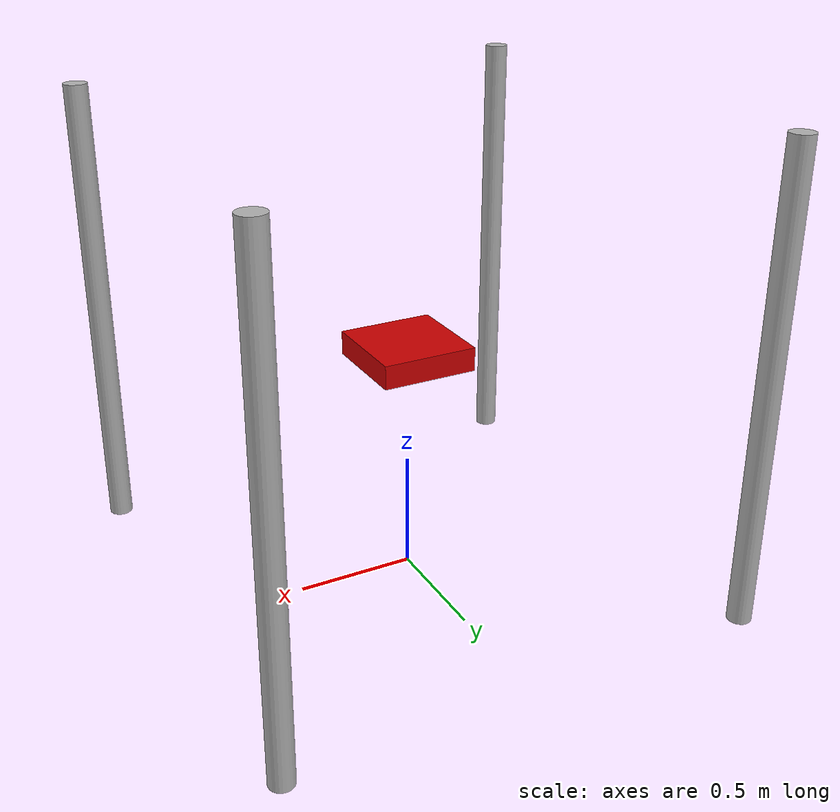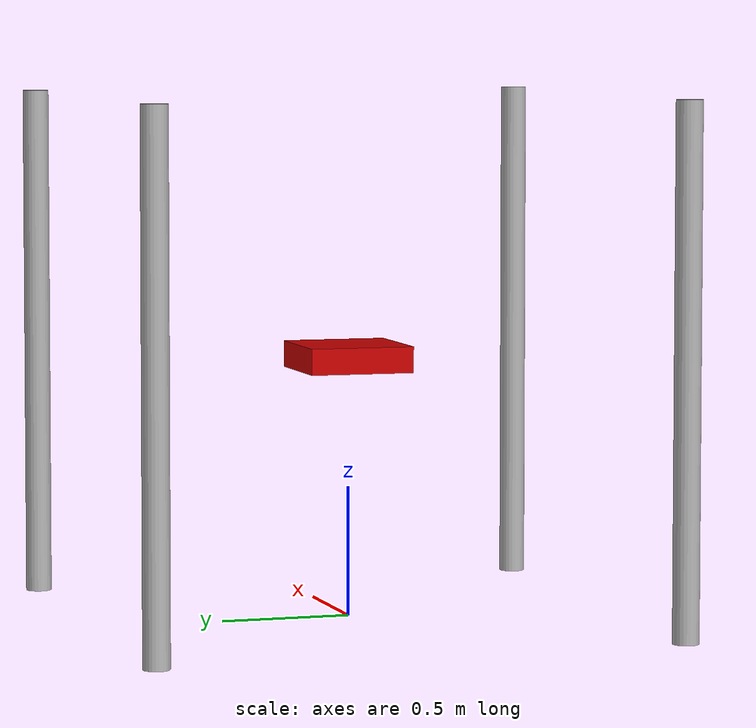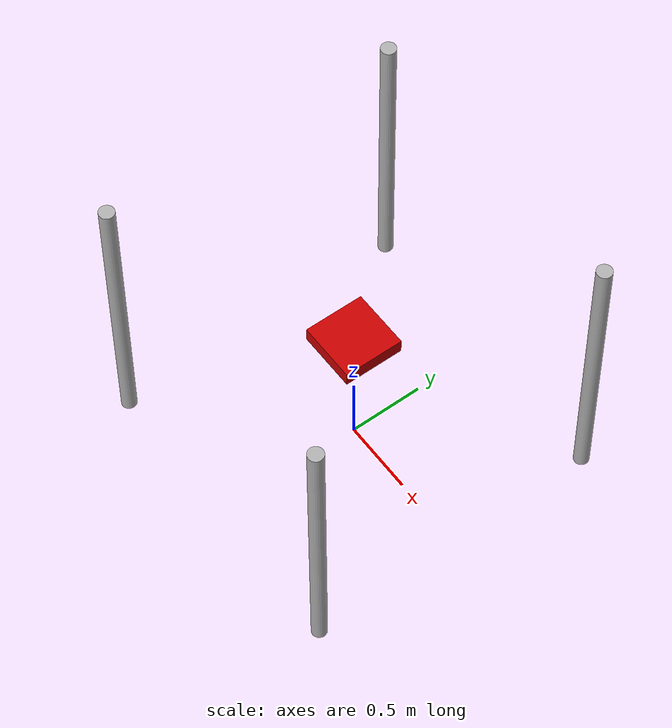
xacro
<?xml version="1.0"?>
<robot xmlns:xacro="http://www.ros.org/wiki/xacro" name="cable_robot">
    <!-- Frame dimensions -->
    <xacro:property name="frame_size" value="2.0"/>      <!-- Size of square frame -->
    <xacro:property name="frame_height" value="2.0"/>    <!-- Height of frame -->
    <xacro:property name="pillar_radius" value="0.05"/>  <!-- Radius of frame pillars -->
    <xacro:property name="pillar_mass" value="5.0"/>     <!-- Mass of each pillar -->

    <!-- Platform dimensions -->
    <xacro:property name="platform_width" value="0.4"/>
    <xacro:property name="platform_length" value="0.4"/>
    <xacro:property name="platform_height" value="0.1"/>
    <xacro:property name="platform_mass" value="1.0"/>

    <!-- Colors -->
    <material name="gray">
        <color rgba="0.7 0.7 0.7 1"/>
    </material>
    <material name="red">
        <color rgba="0.8 0.0 0.0 1"/>
    </material>

    <!-- Base Link (World) -->
    <link name="world"/>

    <!-- Platform -->
    <link name="platform">
        <visual>
            <geometry>
                <box size="${platform_width} ${platform_length} ${platform_height}"/>
            </geometry>
            <material name="red"/>
        </visual>
        <collision>
            <geometry>
                <box size="${platform_width} ${platform_length} ${platform_height}"/>
            </geometry>
        </collision>
        <inertial>
            <origin xyz="0 0 0" rpy="0 0 0"/>
            <mass value="${platform_mass}"/>
            <inertia
                ixx="${platform_mass * (platform_length*platform_length + platform_height*platform_height) / 12.0}"
                iyy="${platform_mass * (platform_width*platform_width + platform_height*platform_height) / 12.0}"
                izz="${platform_mass * (platform_width*platform_width + platform_length*platform_length) / 12.0}"
                ixy="0.0" ixz="0.0" iyz="0.0"/>
        </inertial>
    </link>

    <!-- Frame pillars (fixed to world) -->
    <xacro:macro name="create_pillar" params="name x y">
        <link name="${name}">
            <visual>
                <geometry>
                    <cylinder radius="${pillar_radius}" length="${frame_height}"/>
                </geometry>
                <material name="gray"/>
                <origin xyz="0 0 ${frame_height/2}"/>
            </visual>
            <collision>
                <geometry>
                    <cylinder radius="${pillar_radius}" length="${frame_height}"/>
                </geometry>
                <origin xyz="0 0 ${frame_height/2}"/>
            </collision>
            <inertial>
                <origin xyz="0 0 ${frame_height/2}" rpy="0 0 0"/>
                <mass value="${pillar_mass}"/>
                <inertia
                    ixx="${(pillar_mass/12.0) * (3*pillar_radius*pillar_radius + frame_height*frame_height)}"
                    iyy="${(pillar_mass/12.0) * (3*pillar_radius*pillar_radius + frame_height*frame_height)}"
                    izz="${(pillar_mass/2.0) * (pillar_radius*pillar_radius)}"
                    ixy="0.0" ixz="0.0" iyz="0.0"/>
            </inertial>
        </link>

        <joint name="${name}_joint" type="fixed">
            <parent link="world"/>
            <child link="${name}"/>
            <origin xyz="${x} ${y} 0"/>
        </joint>
    </xacro:macro>

    <!-- Create the four pillars -->
    <xacro:create_pillar name="pillar_1" x="${frame_size/2}" y="${frame_size/2}"/>
    <xacro:create_pillar name="pillar_2" x="${frame_size/2}" y="${-frame_size/2}"/>
    <xacro:create_pillar name="pillar_3" x="${-frame_size/2}" y="${frame_size/2}"/>
    <xacro:create_pillar name="pillar_4" x="${-frame_size/2}" y="${-frame_size/2}"/>

    <!-- Platform joint -->
    <joint name="platform_joint" type="fixed">
        <parent link="world"/>
        <child link="platform"/>
        <origin xyz="0 0 1.0" rpy="0 0 0"/>
    </joint>

    <!-- Gazebo-specific properties -->
    <gazebo>
        <plugin name="gazebo_ros_control" filename="libgazebo_ros_control.so">
            <robotNamespace>/cable_robot</robotNamespace>
            <robotSimType>gazebo_ros_control/DefaultRobotHWSim</robotSimType>
            <legacyModeNS>true</legacyModeNS>
        </plugin>
    </gazebo>

    <!-- Material properties for Gazebo -->
    <gazebo reference="platform">
        <material>Gazebo/Red</material>
        <mu1>0.2</mu1>
        <mu2>0.2</mu2>
        <kp>1000000.0</kp>
        <kd>100.0</kd>
        <selfCollide>false</selfCollide>
    </gazebo>

    <gazebo reference="pillar_1">
        <material>Gazebo/Gray</material>
        <mu1>0.2</mu1>
        <mu2>0.2</mu2>
        <selfCollide>false</selfCollide>
    </gazebo>

    <gazebo reference="pillar_2">
        <material>Gazebo/Gray</material>
        <mu1>0.2</mu1>
        <mu2>0.2</mu2>
        <selfCollide>false</selfCollide>
    </gazebo>

    <gazebo reference="pillar_3">
        <material>Gazebo/Gray</material>
        <mu1>0.2</mu1>
        <mu2>0.2</mu2>
        <selfCollide>false</selfCollide>
    </gazebo>

    <gazebo reference="pillar_4">
        <material>Gazebo/Gray</material>
        <mu1>0.2</mu1>
        <mu2>0.2</mu2>
        <selfCollide>false</selfCollide>
    </gazebo>

</robot>
